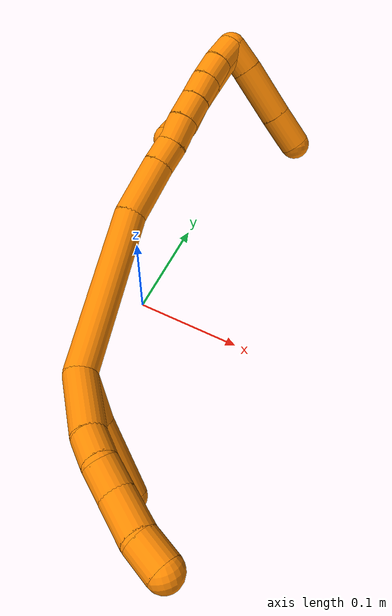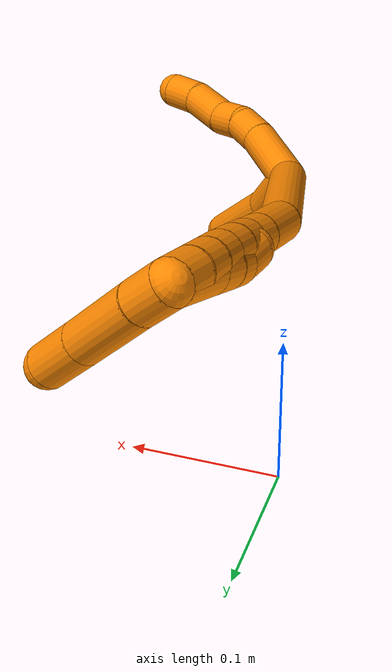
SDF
<sdf version="1.7">
 <world name="default">
  <model name="19">
   <static>0</static>
   <link name="19">
    <collision name="collision-cylinder-e_1_2_8">
     <pose>0.013506 -0.015244 -0.015307 2.35827 0.558727 1.21417</pose>
     <geometry><cylinder><radius>0.0125</radius><length>0.050954</length></cylinder></geometry>
     <surface>
      <friction><ode><mu>1.16</mu><mu2>1.16</mu2><slip1>0</slip1><slip2>0</slip2></ode></friction>
      <contact><ode><kp>1e+06</kp><kd>1</kd><max_vel>0</max_vel><min_depth>0.001</min_depth></ode></contact>
     </surface>
    </collision>
    <visual name="visual-cylinder-e_1_2_8">
     <pose>0.013506 -0.015244 -0.015307 2.35827 0.558727 1.21417</pose>
     <geometry><cylinder><radius>0.0125</radius><length>0.050954</length></cylinder></geometry>
     <material><ambient>0.996078 0.537255 0 1</ambient></material>
    </visual>
    <collision name="collision-cylinder-e_2_8_9">
     <pose>0.034385 -0.035503 -0.037378 2.50354 0.719241 1.69991</pose>
     <geometry><cylinder><radius>0.0125</radius><length>0.022384</length></cylinder></geometry>
     <surface>
      <friction><ode><mu>1.16</mu><mu2>1.16</mu2><slip1>0</slip1><slip2>0</slip2></ode></friction>
      <contact><ode><kp>1e+06</kp><kd>1</kd><max_vel>0</max_vel><min_depth>0.001</min_depth></ode></contact>
     </surface>
    </collision>
    <visual name="visual-cylinder-e_2_8_9">
     <pose>0.034385 -0.035503 -0.037378 2.50354 0.719241 1.69991</pose>
     <geometry><cylinder><radius>0.0125</radius><length>0.022384</length></cylinder></geometry>
     <material><ambient>0.996078 0.537255 0 1</ambient></material>
    </visual>
    <collision name="collision-cylinder-e_3_9_10">
     <pose>0.047768 -0.043024 -0.053212 2.87209 0.568278 2.27234</pose>
     <geometry><cylinder><radius>0.0125</radius><length>0.022332</length></cylinder></geometry>
     <surface>
      <friction><ode><mu>1.16</mu><mu2>1.16</mu2><slip1>0</slip1><slip2>0</slip2></ode></friction>
      <contact><ode><kp>1e+06</kp><kd>1</kd><max_vel>0</max_vel><min_depth>0.001</min_depth></ode></contact>
     </surface>
    </collision>
    <visual name="visual-cylinder-e_3_9_10">
     <pose>0.047768 -0.043024 -0.053212 2.87209 0.568278 2.27234</pose>
     <geometry><cylinder><radius>0.0125</radius><length>0.022332</length></cylinder></geometry>
     <material><ambient>0.996078 0.537255 0 1</ambient></material>
    </visual>
    <collision name="collision-cylinder-e_4_10_11">
     <pose>0.064801 -0.051393 -0.071812 2.58993 0.777996 1.93287</pose>
     <geometry><cylinder><radius>0.0125</radius><length>0.031414</length></cylinder></geometry>
     <surface>
      <friction><ode><mu>1.16</mu><mu2>1.16</mu2><slip1>0</slip1><slip2>0</slip2></ode></friction>
      <contact><ode><kp>1e+06</kp><kd>1</kd><max_vel>0</max_vel><min_depth>0.001</min_depth></ode></contact>
     </surface>
    </collision>
    <visual name="visual-cylinder-e_4_10_11">
     <pose>0.064801 -0.051393 -0.071812 2.58993 0.777996 1.93287</pose>
     <geometry><cylinder><radius>0.0125</radius><length>0.031414</length></cylinder></geometry>
     <material><ambient>0.996078 0.537255 0 1</ambient></material>
    </visual>
    <collision name="collision-cylinder-e_5_11_6">
     <pose>0.083984 -0.058957 -0.089204 2.92872 0.792455 2.64152</pose>
     <geometry><cylinder><radius>0.0125</radius><length>0.022915</length></cylinder></geometry>
     <surface>
      <friction><ode><mu>1.16</mu><mu2>1.16</mu2><slip1>0</slip1><slip2>0</slip2></ode></friction>
      <contact><ode><kp>1e+06</kp><kd>1</kd><max_vel>0</max_vel><min_depth>0.001</min_depth></ode></contact>
     </surface>
    </collision>
    <visual name="visual-cylinder-e_5_11_6">
     <pose>0.083984 -0.058957 -0.089204 2.92872 0.792455 2.64152</pose>
     <geometry><cylinder><radius>0.0125</radius><length>0.022915</length></cylinder></geometry>
     <material><ambient>0.996078 0.537255 0 1</ambient></material>
    </visual>
    <collision name="collision-cylinder-e_1_2_12">
     <pose>-0.002251 0.002617 -0.019983 -3.01138 -0.111242 1.41362</pose>
     <geometry><cylinder><radius>0.0125</radius><length>0.040558</length></cylinder></geometry>
     <surface>
      <friction><ode><mu>1.16</mu><mu2>1.16</mu2><slip1>0</slip1><slip2>0</slip2></ode></friction>
      <contact><ode><kp>1e+06</kp><kd>1</kd><max_vel>0</max_vel><min_depth>0.001</min_depth></ode></contact>
     </surface>
    </collision>
    <visual name="visual-cylinder-e_1_2_12">
     <pose>-0.002251 0.002617 -0.019983 -3.01138 -0.111242 1.41362</pose>
     <geometry><cylinder><radius>0.0125</radius><length>0.040558</length></cylinder></geometry>
     <material><ambient>0.996078 0.537255 0 1</ambient></material>
    </visual>
    <collision name="collision-cylinder-e_2_12_5">
     <pose>-0.001776 0.008032 -0.069429 -3.04689 0.091853 -1.54017</pose>
     <geometry><cylinder><radius>0.0125</radius><length>0.059442</length></cylinder></geometry>
     <surface>
      <friction><ode><mu>1.16</mu><mu2>1.16</mu2><slip1>0</slip1><slip2>0</slip2></ode></friction>
      <contact><ode><kp>1e+06</kp><kd>1</kd><max_vel>0</max_vel><min_depth>0.001</min_depth></ode></contact>
     </surface>
    </collision>
    <visual name="visual-cylinder-e_2_12_5">
     <pose>-0.001776 0.008032 -0.069429 -3.04689 0.091853 -1.54017</pose>
     <geometry><cylinder><radius>0.0125</radius><length>0.059442</length></cylinder></geometry>
     <material><ambient>0.996078 0.537255 0 1</ambient></material>
    </visual>
    <collision name="collision-cylinder-e_1_2_13">
     <pose>0.004795 0.042549 0.047476 -0.730724 0.075074 -0.02873</pose>
     <geometry><cylinder><radius>0.0125</radius><length>0.127867</length></cylinder></geometry>
     <surface>
      <friction><ode><mu>1.16</mu><mu2>1.16</mu2><slip1>0</slip1><slip2>0</slip2></ode></friction>
      <contact><ode><kp>1e+06</kp><kd>1</kd><max_vel>0</max_vel><min_depth>0.001</min_depth></ode></contact>
     </surface>
    </collision>
    <visual name="visual-cylinder-e_1_2_13">
     <pose>0.004795 0.042549 0.047476 -0.730724 0.075074 -0.02873</pose>
     <geometry><cylinder><radius>0.0125</radius><length>0.127867</length></cylinder></geometry>
     <material><ambient>0.996078 0.537255 0 1</ambient></material>
    </visual>
    <collision name="collision-cylinder-e_2_13_14">
     <pose>0.016439 0.101364 0.110394 -0.811361 0.29637 -0.128057</pose>
     <geometry><cylinder><radius>0.0125</radius><length>0.046899</length></cylinder></geometry>
     <surface>
      <friction><ode><mu>1.16</mu><mu2>1.16</mu2><slip1>0</slip1><slip2>0</slip2></ode></friction>
      <contact><ode><kp>1e+06</kp><kd>1</kd><max_vel>0</max_vel><min_depth>0.001</min_depth></ode></contact>
     </surface>
    </collision>
    <visual name="visual-cylinder-e_2_13_14">
     <pose>0.016439 0.101364 0.110394 -0.811361 0.29637 -0.128057</pose>
     <geometry><cylinder><radius>0.0125</radius><length>0.046899</length></cylinder></geometry>
     <material><ambient>0.996078 0.537255 0 1</ambient></material>
    </visual>
    <collision name="collision-cylinder-e_3_14_15">
     <pose>0.026744 0.124754 0.132142 -0.846307 0.34843 -0.158195</pose>
     <geometry><cylinder><radius>0.0125</radius><length>0.020247</length></cylinder></geometry>
     <surface>
      <friction><ode><mu>1.16</mu><mu2>1.16</mu2><slip1>0</slip1><slip2>0</slip2></ode></friction>
      <contact><ode><kp>1e+06</kp><kd>1</kd><max_vel>0</max_vel><min_depth>0.001</min_depth></ode></contact>
     </surface>
    </collision>
    <visual name="visual-cylinder-e_3_14_15">
     <pose>0.026744 0.124754 0.132142 -0.846307 0.34843 -0.158195</pose>
     <geometry><cylinder><radius>0.0125</radius><length>0.020247</length></cylinder></geometry>
     <material><ambient>0.996078 0.537255 0 1</ambient></material>
    </visual>
    <collision name="collision-cylinder-e_4_15_16">
     <pose>0.033574 0.139312 0.146672 -0.734977 0.295425 -0.114441</pose>
     <geometry><cylinder><radius>0.0125</radius><length>0.023175</length></cylinder></geometry>
     <surface>
      <friction><ode><mu>1.16</mu><mu2>1.16</mu2><slip1>0</slip1><slip2>0</slip2></ode></friction>
      <contact><ode><kp>1e+06</kp><kd>1</kd><max_vel>0</max_vel><min_depth>0.001</min_depth></ode></contact>
     </surface>
    </collision>
    <visual name="visual-cylinder-e_4_15_16">
     <pose>0.033574 0.139312 0.146672 -0.734977 0.295425 -0.114441</pose>
     <geometry><cylinder><radius>0.0125</radius><length>0.023175</length></cylinder></geometry>
     <material><ambient>0.996078 0.537255 0 1</ambient></material>
    </visual>
    <collision name="collision-cylinder-e_5_16_17">
     <pose>0.040236 0.154063 0.161837 -0.811708 0.315258 -0.136391</pose>
     <geometry><cylinder><radius>0.0125</radius><length>0.021217</length></cylinder></geometry>
     <surface>
      <friction><ode><mu>1.16</mu><mu2>1.16</mu2><slip1>0</slip1><slip2>0</slip2></ode></friction>
      <contact><ode><kp>1e+06</kp><kd>1</kd><max_vel>0</max_vel><min_depth>0.001</min_depth></ode></contact>
     </surface>
    </collision>
    <visual name="visual-cylinder-e_5_16_17">
     <pose>0.040236 0.154063 0.161837 -0.811708 0.315258 -0.136391</pose>
     <geometry><cylinder><radius>0.0125</radius><length>0.021217</length></cylinder></geometry>
     <material><ambient>0.996078 0.537255 0 1</ambient></material>
    </visual>
    <collision name="collision-cylinder-e_6_17_18">
     <pose>0.046385 0.168426 0.175456 -0.812237 0.286382 -0.123841</pose>
     <geometry><cylinder><radius>0.0125</radius><length>0.020241</length></cylinder></geometry>
     <surface>
      <friction><ode><mu>1.16</mu><mu2>1.16</mu2><slip1>0</slip1><slip2>0</slip2></ode></friction>
      <contact><ode><kp>1e+06</kp><kd>1</kd><max_vel>0</max_vel><min_depth>0.001</min_depth></ode></contact>
     </surface>
    </collision>
    <visual name="visual-cylinder-e_6_17_18">
     <pose>0.046385 0.168426 0.175456 -0.812237 0.286382 -0.123841</pose>
     <geometry><cylinder><radius>0.0125</radius><length>0.020241</length></cylinder></geometry>
     <material><ambient>0.996078 0.537255 0 1</ambient></material>
    </visual>
    <collision name="collision-cylinder-e_7_18_19">
     <pose>0.052347 0.182805 0.188245 -0.876099 0.314404 -0.14822</pose>
     <geometry><cylinder><radius>0.0125</radius><length>0.020074</length></cylinder></geometry>
     <surface>
      <friction><ode><mu>1.16</mu><mu2>1.16</mu2><slip1>0</slip1><slip2>0</slip2></ode></friction>
      <contact><ode><kp>1e+06</kp><kd>1</kd><max_vel>0</max_vel><min_depth>0.001</min_depth></ode></contact>
     </surface>
    </collision>
    <visual name="visual-cylinder-e_7_18_19">
     <pose>0.052347 0.182805 0.188245 -0.876099 0.314404 -0.14822</pose>
     <geometry><cylinder><radius>0.0125</radius><length>0.020074</length></cylinder></geometry>
     <material><ambient>0.996078 0.537255 0 1</ambient></material>
    </visual>
    <collision name="collision-cylinder-e_8_19_1">
     <pose>0.058916 0.198064 0.199646 -0.982158 0.348732 -0.187852</pose>
     <geometry><cylinder><radius>0.0125</radius><length>0.020281</length></cylinder></geometry>
     <surface>
      <friction><ode><mu>1.16</mu><mu2>1.16</mu2><slip1>0</slip1><slip2>0</slip2></ode></friction>
      <contact><ode><kp>1e+06</kp><kd>1</kd><max_vel>0</max_vel><min_depth>0.001</min_depth></ode></contact>
     </surface>
    </collision>
    <visual name="visual-cylinder-e_8_19_1">
     <pose>0.058916 0.198064 0.199646 -0.982158 0.348732 -0.187852</pose>
     <geometry><cylinder><radius>0.0125</radius><length>0.020281</length></cylinder></geometry>
     <material><ambient>0.996078 0.537255 0 1</ambient></material>
    </visual>
    <collision name="collision-cylinder-e_1_1_20">
     <pose>0.054534 0.192607 0.192622 2.31464 -0.407335 -0.879875</pose>
     <geometry><cylinder><radius>0.0125</radius><length>0.039617</length></cylinder></geometry>
     <surface>
      <friction><ode><mu>1.16</mu><mu2>1.16</mu2><slip1>0</slip1><slip2>0</slip2></ode></friction>
      <contact><ode><kp>1e+06</kp><kd>1</kd><max_vel>0</max_vel><min_depth>0.001</min_depth></ode></contact>
     </surface>
    </collision>
    <visual name="visual-cylinder-e_1_1_20">
     <pose>0.054534 0.192607 0.192622 2.31464 -0.407335 -0.879875</pose>
     <geometry><cylinder><radius>0.0125</radius><length>0.039617</length></cylinder></geometry>
     <material><ambient>0.996078 0.537255 0 1</ambient></material>
    </visual>
    <collision name="collision-cylinder-e_2_20_21">
     <pose>0.042632 0.172439 0.173974 2.32179 -0.411939 -0.896404</pose>
     <geometry><cylinder><radius>0.0125</radius><length>0.020256</length></cylinder></geometry>
     <surface>
      <friction><ode><mu>1.16</mu><mu2>1.16</mu2><slip1>0</slip1><slip2>0</slip2></ode></friction>
      <contact><ode><kp>1e+06</kp><kd>1</kd><max_vel>0</max_vel><min_depth>0.001</min_depth></ode></contact>
     </surface>
    </collision>
    <visual name="visual-cylinder-e_2_20_21">
     <pose>0.042632 0.172439 0.173974 2.32179 -0.411939 -0.896404</pose>
     <geometry><cylinder><radius>0.0125</radius><length>0.020256</length></cylinder></geometry>
     <material><ambient>0.996078 0.537255 0 1</ambient></material>
    </visual>
    <collision name="collision-cylinder-e_3_21_22">
     <pose>0.03519 0.159513 0.160477 2.43296 -0.344524 -0.879257</pose>
     <geometry><cylinder><radius>0.0125</radius><length>0.02005</length></cylinder></geometry>
     <surface>
      <friction><ode><mu>1.16</mu><mu2>1.16</mu2><slip1>0</slip1><slip2>0</slip2></ode></friction>
      <contact><ode><kp>1e+06</kp><kd>1</kd><max_vel>0</max_vel><min_depth>0.001</min_depth></ode></contact>
     </surface>
    </collision>
    <visual name="visual-cylinder-e_3_21_22">
     <pose>0.03519 0.159513 0.160477 2.43296 -0.344524 -0.879257</pose>
     <geometry><cylinder><radius>0.0125</radius><length>0.02005</length></cylinder></geometry>
     <material><ambient>0.996078 0.537255 0 1</ambient></material>
    </visual>
    <collision name="collision-cylinder-e_4_22_4">
     <pose>0.029084 0.144918 0.148635 2.07619 -0.274442 -0.460159</pose>
     <geometry><cylinder><radius>0.0125</radius><length>0.020077</length></cylinder></geometry>
     <surface>
      <friction><ode><mu>1.16</mu><mu2>1.16</mu2><slip1>0</slip1><slip2>0</slip2></ode></friction>
      <contact><ode><kp>1e+06</kp><kd>1</kd><max_vel>0</max_vel><min_depth>0.001</min_depth></ode></contact>
     </surface>
    </collision>
    <visual name="visual-cylinder-e_4_22_4">
     <pose>0.029084 0.144918 0.148635 2.07619 -0.274442 -0.460159</pose>
     <geometry><cylinder><radius>0.0125</radius><length>0.020077</length></cylinder></geometry>
     <material><ambient>0.996078 0.537255 0 1</ambient></material>
    </visual>
    <collision name="collision-cylinder-e_1_1_23">
     <pose>0.064435 0.210231 0.194808 -2.74518 0.18485 -0.864751</pose>
     <geometry><cylinder><radius>0.0125</radius><length>0.022343</length></cylinder></geometry>
     <surface>
      <friction><ode><mu>1.16</mu><mu2>1.16</mu2><slip1>0</slip1><slip2>0</slip2></ode></friction>
      <contact><ode><kp>1e+06</kp><kd>1</kd><max_vel>0</max_vel><min_depth>0.001</min_depth></ode></contact>
     </surface>
    </collision>
    <visual name="visual-cylinder-e_1_1_23">
     <pose>0.064435 0.210231 0.194808 -2.74518 0.18485 -0.864751</pose>
     <geometry><cylinder><radius>0.0125</radius><length>0.022343</length></cylinder></geometry>
     <material><ambient>0.996078 0.537255 0 1</ambient></material>
    </visual>
    <collision name="collision-cylinder-e_2_23_24">
     <pose>0.069769 0.22264 0.163093 -2.77978 0.141213 -0.737931</pose>
     <geometry><cylinder><radius>0.0125</radius><length>0.046623</length></cylinder></geometry>
     <surface>
      <friction><ode><mu>1.16</mu><mu2>1.16</mu2><slip1>0</slip1><slip2>0</slip2></ode></friction>
      <contact><ode><kp>1e+06</kp><kd>1</kd><max_vel>0</max_vel><min_depth>0.001</min_depth></ode></contact>
     </surface>
    </collision>
    <visual name="visual-cylinder-e_2_23_24">
     <pose>0.069769 0.22264 0.163093 -2.77978 0.141213 -0.737931</pose>
     <geometry><cylinder><radius>0.0125</radius><length>0.046623</length></cylinder></geometry>
     <material><ambient>0.996078 0.537255 0 1</ambient></material>
    </visual>
    <collision name="collision-cylinder-e_3_24_3">
     <pose>0.07548 0.236473 0.127267 -2.76308 0.157239 -0.780406</pose>
     <geometry><cylinder><radius>0.0125</radius><length>0.031034</length></cylinder></geometry>
     <surface>
      <friction><ode><mu>1.16</mu><mu2>1.16</mu2><slip1>0</slip1><slip2>0</slip2></ode></friction>
      <contact><ode><kp>1e+06</kp><kd>1</kd><max_vel>0</max_vel><min_depth>0.001</min_depth></ode></contact>
     </surface>
    </collision>
    <visual name="visual-cylinder-e_3_24_3">
     <pose>0.07548 0.236473 0.127267 -2.76308 0.157239 -0.780406</pose>
     <geometry><cylinder><radius>0.0125</radius><length>0.031034</length></cylinder></geometry>
     <material><ambient>0.996078 0.537255 0 1</ambient></material>
    </visual>
    <collision name="collision-sphere-3">
     <pose>0.07791 0.242136 0.113027 0 -0 0</pose>
     <geometry><sphere><radius>0.0125</radius></sphere></geometry>
     <surface>
      <friction><ode><mu>1.16</mu><mu2>1.16</mu2><slip1>0</slip1><slip2>0</slip2></ode></friction>
      <contact><ode><kp>1e+06</kp><kd>1</kd><max_vel>0</max_vel><min_depth>0.001</min_depth></ode></contact>
     </surface>
    </collision>
    <visual name="visual-sphere-3">
     <pose>0.07791 0.242136 0.113027 0 -0 0</pose>
     <geometry><sphere><radius>0.0125</radius></sphere></geometry>
     <material><ambient>0.996078 0.537255 0 1</ambient></material>
    </visual>
    <collision name="collision-sphere-24">
     <pose>0.07305 0.230809 0.141508 0 -0 0</pose>
     <geometry><sphere><radius>0.0125</radius></sphere></geometry>
     <surface>
      <friction><ode><mu>1.16</mu><mu2>1.16</mu2><slip1>0</slip1><slip2>0</slip2></ode></friction>
      <contact><ode><kp>1e+06</kp><kd>1</kd><max_vel>0</max_vel><min_depth>0.001</min_depth></ode></contact>
     </surface>
    </collision>
    <visual name="visual-sphere-24">
     <pose>0.07305 0.230809 0.141508 0 -0 0</pose>
     <geometry><sphere><radius>0.0125</radius></sphere></geometry>
     <material><ambient>0.996078 0.537255 0 1</ambient></material>
    </visual>
    <collision name="collision-sphere-23">
     <pose>0.066488 0.214471 0.184679 0 -0 0</pose>
     <geometry><sphere><radius>0.0125</radius></sphere></geometry>
     <surface>
      <friction><ode><mu>1.16</mu><mu2>1.16</mu2><slip1>0</slip1><slip2>0</slip2></ode></friction>
      <contact><ode><kp>1e+06</kp><kd>1</kd><max_vel>0</max_vel><min_depth>0.001</min_depth></ode></contact>
     </surface>
    </collision>
    <visual name="visual-sphere-23">
     <pose>0.066488 0.214471 0.184679 0 -0 0</pose>
     <geometry><sphere><radius>0.0125</radius></sphere></geometry>
     <material><ambient>0.996078 0.537255 0 1</ambient></material>
    </visual>
    <collision name="collision-sphere-4">
     <pose>0.026364 0.136463 0.143957 0 -0 0</pose>
     <geometry><sphere><radius>0.0125</radius></sphere></geometry>
     <surface>
      <friction><ode><mu>1.16</mu><mu2>1.16</mu2><slip1>0</slip1><slip2>0</slip2></ode></friction>
      <contact><ode><kp>1e+06</kp><kd>1</kd><max_vel>0</max_vel><min_depth>0.001</min_depth></ode></contact>
     </surface>
    </collision>
    <visual name="visual-sphere-4">
     <pose>0.026364 0.136463 0.143957 0 -0 0</pose>
     <geometry><sphere><radius>0.0125</radius></sphere></geometry>
     <material><ambient>0.996078 0.537255 0 1</ambient></material>
    </visual>
    <collision name="collision-sphere-22">
     <pose>0.031805 0.153373 0.153313 0 -0 0</pose>
     <geometry><sphere><radius>0.0125</radius></sphere></geometry>
     <surface>
      <friction><ode><mu>1.16</mu><mu2>1.16</mu2><slip1>0</slip1><slip2>0</slip2></ode></friction>
      <contact><ode><kp>1e+06</kp><kd>1</kd><max_vel>0</max_vel><min_depth>0.001</min_depth></ode></contact>
     </surface>
    </collision>
    <visual name="visual-sphere-22">
     <pose>0.031805 0.153373 0.153313 0 -0 0</pose>
     <geometry><sphere><radius>0.0125</radius></sphere></geometry>
     <material><ambient>0.996078 0.537255 0 1</ambient></material>
    </visual>
    <collision name="collision-sphere-21">
     <pose>0.038576 0.165654 0.167641 0 -0 0</pose>
     <geometry><sphere><radius>0.0125</radius></sphere></geometry>
     <surface>
      <friction><ode><mu>1.16</mu><mu2>1.16</mu2><slip1>0</slip1><slip2>0</slip2></ode></friction>
      <contact><ode><kp>1e+06</kp><kd>1</kd><max_vel>0</max_vel><min_depth>0.001</min_depth></ode></contact>
     </surface>
    </collision>
    <visual name="visual-sphere-21">
     <pose>0.038576 0.165654 0.167641 0 -0 0</pose>
     <geometry><sphere><radius>0.0125</radius></sphere></geometry>
     <material><ambient>0.996078 0.537255 0 1</ambient></material>
    </visual>
    <collision name="collision-sphere-20">
     <pose>0.046687 0.179223 0.180307 0 -0 0</pose>
     <geometry><sphere><radius>0.0125</radius></sphere></geometry>
     <surface>
      <friction><ode><mu>1.16</mu><mu2>1.16</mu2><slip1>0</slip1><slip2>0</slip2></ode></friction>
      <contact><ode><kp>1e+06</kp><kd>1</kd><max_vel>0</max_vel><min_depth>0.001</min_depth></ode></contact>
     </surface>
    </collision>
    <visual name="visual-sphere-20">
     <pose>0.046687 0.179223 0.180307 0 -0 0</pose>
     <geometry><sphere><radius>0.0125</radius></sphere></geometry>
     <material><ambient>0.996078 0.537255 0 1</ambient></material>
    </visual>
    <collision name="collision-sphere-6">
     <pose>0.092143 -0.060656 -0.097067 0 -0 0</pose>
     <geometry><sphere><radius>0.0125</radius></sphere></geometry>
     <surface>
      <friction><ode><mu>1.16</mu><mu2>1.16</mu2><slip1>0</slip1><slip2>0</slip2></ode></friction>
      <contact><ode><kp>1e+06</kp><kd>1</kd><max_vel>0</max_vel><min_depth>0.001</min_depth></ode></contact>
     </surface>
    </collision>
    <visual name="visual-sphere-6">
     <pose>0.092143 -0.060656 -0.097067 0 -0 0</pose>
     <geometry><sphere><radius>0.0125</radius></sphere></geometry>
     <material><ambient>0.996078 0.537255 0 1</ambient></material>
    </visual>
    <collision name="collision-sphere-11">
     <pose>0.075825 -0.057257 -0.081341 0 -0 0</pose>
     <geometry><sphere><radius>0.0125</radius></sphere></geometry>
     <surface>
      <friction><ode><mu>1.16</mu><mu2>1.16</mu2><slip1>0</slip1><slip2>0</slip2></ode></friction>
      <contact><ode><kp>1e+06</kp><kd>1</kd><max_vel>0</max_vel><min_depth>0.001</min_depth></ode></contact>
     </surface>
    </collision>
    <visual name="visual-sphere-11">
     <pose>0.075825 -0.057257 -0.081341 0 -0 0</pose>
     <geometry><sphere><radius>0.0125</radius></sphere></geometry>
     <material><ambient>0.996078 0.537255 0 1</ambient></material>
    </visual>
    <collision name="collision-sphere-10">
     <pose>0.053777 -0.045529 -0.062284 0 -0 0</pose>
     <geometry><sphere><radius>0.0125</radius></sphere></geometry>
     <surface>
      <friction><ode><mu>1.16</mu><mu2>1.16</mu2><slip1>0</slip1><slip2>0</slip2></ode></friction>
      <contact><ode><kp>1e+06</kp><kd>1</kd><max_vel>0</max_vel><min_depth>0.001</min_depth></ode></contact>
     </surface>
    </collision>
    <visual name="visual-sphere-10">
     <pose>0.053777 -0.045529 -0.062284 0 -0 0</pose>
     <geometry><sphere><radius>0.0125</radius></sphere></geometry>
     <material><ambient>0.996078 0.537255 0 1</ambient></material>
    </visual>
    <collision name="collision-sphere-9">
     <pose>0.041758 -0.040518 -0.044141 0 -0 0</pose>
     <geometry><sphere><radius>0.0125</radius></sphere></geometry>
     <surface>
      <friction><ode><mu>1.16</mu><mu2>1.16</mu2><slip1>0</slip1><slip2>0</slip2></ode></friction>
      <contact><ode><kp>1e+06</kp><kd>1</kd><max_vel>0</max_vel><min_depth>0.001</min_depth></ode></contact>
     </surface>
    </collision>
    <visual name="visual-sphere-9">
     <pose>0.041758 -0.040518 -0.044141 0 -0 0</pose>
     <geometry><sphere><radius>0.0125</radius></sphere></geometry>
     <material><ambient>0.996078 0.537255 0 1</ambient></material>
    </visual>
    <collision name="collision-sphere-2">
     <geometry><sphere><radius>0.0125</radius></sphere></geometry>
     <surface>
      <friction><ode><mu>1.16</mu><mu2>1.16</mu2><slip1>0</slip1><slip2>0</slip2></ode></friction>
      <contact><ode><kp>1e+06</kp><kd>1</kd><max_vel>0</max_vel><min_depth>0.001</min_depth></ode></contact>
     </surface>
    </collision>
    <visual name="visual-sphere-2">
     <geometry><sphere><radius>0.0125</radius></sphere></geometry>
     <material><ambient>0.996078 0.537255 0 1</ambient></material>
    </visual>
    <collision name="collision-sphere-19">
     <pose>0.055451 0.190138 0.194355 0 -0 0</pose>
     <geometry><sphere><radius>0.0125</radius></sphere></geometry>
     <surface>
      <friction><ode><mu>1.16</mu><mu2>1.16</mu2><slip1>0</slip1><slip2>0</slip2></ode></friction>
      <contact><ode><kp>1e+06</kp><kd>1</kd><max_vel>0</max_vel><min_depth>0.001</min_depth></ode></contact>
     </surface>
    </collision>
    <visual name="visual-sphere-19">
     <pose>0.055451 0.190138 0.194355 0 -0 0</pose>
     <geometry><sphere><radius>0.0125</radius></sphere></geometry>
     <material><ambient>0.996078 0.537255 0 1</ambient></material>
    </visual>
    <collision name="collision-sphere-8">
     <pose>0.027011 -0.030488 -0.030614 0 -0 0</pose>
     <geometry><sphere><radius>0.0125</radius></sphere></geometry>
     <surface>
      <friction><ode><mu>1.16</mu><mu2>1.16</mu2><slip1>0</slip1><slip2>0</slip2></ode></friction>
      <contact><ode><kp>1e+06</kp><kd>1</kd><max_vel>0</max_vel><min_depth>0.001</min_depth></ode></contact>
     </surface>
    </collision>
    <visual name="visual-sphere-8">
     <pose>0.027011 -0.030488 -0.030614 0 -0 0</pose>
     <geometry><sphere><radius>0.0125</radius></sphere></geometry>
     <material><ambient>0.996078 0.537255 0 1</ambient></material>
    </visual>
    <collision name="collision-sphere-12">
     <pose>-0.004502 0.005234 -0.039967 0 -0 0</pose>
     <geometry><sphere><radius>0.0125</radius></sphere></geometry>
     <surface>
      <friction><ode><mu>1.16</mu><mu2>1.16</mu2><slip1>0</slip1><slip2>0</slip2></ode></friction>
      <contact><ode><kp>1e+06</kp><kd>1</kd><max_vel>0</max_vel><min_depth>0.001</min_depth></ode></contact>
     </surface>
    </collision>
    <visual name="visual-sphere-12">
     <pose>-0.004502 0.005234 -0.039967 0 -0 0</pose>
     <geometry><sphere><radius>0.0125</radius></sphere></geometry>
     <material><ambient>0.996078 0.537255 0 1</ambient></material>
    </visual>
    <collision name="collision-sphere-5">
     <pose>0.00095 0.010831 -0.098892 0 -0 0</pose>
     <geometry><sphere><radius>0.0125</radius></sphere></geometry>
     <surface>
      <friction><ode><mu>1.16</mu><mu2>1.16</mu2><slip1>0</slip1><slip2>0</slip2></ode></friction>
      <contact><ode><kp>1e+06</kp><kd>1</kd><max_vel>0</max_vel><min_depth>0.001</min_depth></ode></contact>
     </surface>
    </collision>
    <visual name="visual-sphere-5">
     <pose>0.00095 0.010831 -0.098892 0 -0 0</pose>
     <geometry><sphere><radius>0.0125</radius></sphere></geometry>
     <material><ambient>0.996078 0.537255 0 1</ambient></material>
    </visual>
    <collision name="collision-sphere-13">
     <pose>0.00959 0.085099 0.094953 0 -0 0</pose>
     <geometry><sphere><radius>0.0125</radius></sphere></geometry>
     <surface>
      <friction><ode><mu>1.16</mu><mu2>1.16</mu2><slip1>0</slip1><slip2>0</slip2></ode></friction>
      <contact><ode><kp>1e+06</kp><kd>1</kd><max_vel>0</max_vel><min_depth>0.001</min_depth></ode></contact>
     </surface>
    </collision>
    <visual name="visual-sphere-13">
     <pose>0.00959 0.085099 0.094953 0 -0 0</pose>
     <geometry><sphere><radius>0.0125</radius></sphere></geometry>
     <material><ambient>0.996078 0.537255 0 1</ambient></material>
    </visual>
    <collision name="collision-sphere-14">
     <pose>0.023287 0.117628 0.125836 0 -0 0</pose>
     <geometry><sphere><radius>0.0125</radius></sphere></geometry>
     <surface>
      <friction><ode><mu>1.16</mu><mu2>1.16</mu2><slip1>0</slip1><slip2>0</slip2></ode></friction>
      <contact><ode><kp>1e+06</kp><kd>1</kd><max_vel>0</max_vel><min_depth>0.001</min_depth></ode></contact>
     </surface>
    </collision>
    <visual name="visual-sphere-14">
     <pose>0.023287 0.117628 0.125836 0 -0 0</pose>
     <geometry><sphere><radius>0.0125</radius></sphere></geometry>
     <material><ambient>0.996078 0.537255 0 1</ambient></material>
    </visual>
    <collision name="collision-sphere-15">
     <pose>0.0302 0.131879 0.138448 0 -0 0</pose>
     <geometry><sphere><radius>0.0125</radius></sphere></geometry>
     <surface>
      <friction><ode><mu>1.16</mu><mu2>1.16</mu2><slip1>0</slip1><slip2>0</slip2></ode></friction>
      <contact><ode><kp>1e+06</kp><kd>1</kd><max_vel>0</max_vel><min_depth>0.001</min_depth></ode></contact>
     </surface>
    </collision>
    <visual name="visual-sphere-15">
     <pose>0.0302 0.131879 0.138448 0 -0 0</pose>
     <geometry><sphere><radius>0.0125</radius></sphere></geometry>
     <material><ambient>0.996078 0.537255 0 1</ambient></material>
    </visual>
    <collision name="collision-sphere-16">
     <pose>0.036947 0.146746 0.154895 0 -0 0</pose>
     <geometry><sphere><radius>0.0125</radius></sphere></geometry>
     <surface>
      <friction><ode><mu>1.16</mu><mu2>1.16</mu2><slip1>0</slip1><slip2>0</slip2></ode></friction>
      <contact><ode><kp>1e+06</kp><kd>1</kd><max_vel>0</max_vel><min_depth>0.001</min_depth></ode></contact>
     </surface>
    </collision>
    <visual name="visual-sphere-16">
     <pose>0.036947 0.146746 0.154895 0 -0 0</pose>
     <geometry><sphere><radius>0.0125</radius></sphere></geometry>
     <material><ambient>0.996078 0.537255 0 1</ambient></material>
    </visual>
    <collision name="collision-sphere-17">
     <pose>0.043526 0.161379 0.168778 0 -0 0</pose>
     <geometry><sphere><radius>0.0125</radius></sphere></geometry>
     <surface>
      <friction><ode><mu>1.16</mu><mu2>1.16</mu2><slip1>0</slip1><slip2>0</slip2></ode></friction>
      <contact><ode><kp>1e+06</kp><kd>1</kd><max_vel>0</max_vel><min_depth>0.001</min_depth></ode></contact>
     </surface>
    </collision>
    <visual name="visual-sphere-17">
     <pose>0.043526 0.161379 0.168778 0 -0 0</pose>
     <geometry><sphere><radius>0.0125</radius></sphere></geometry>
     <material><ambient>0.996078 0.537255 0 1</ambient></material>
    </visual>
    <collision name="collision-sphere-18">
     <pose>0.049243 0.175472 0.182134 0 -0 0</pose>
     <geometry><sphere><radius>0.0125</radius></sphere></geometry>
     <surface>
      <friction><ode><mu>1.16</mu><mu2>1.16</mu2><slip1>0</slip1><slip2>0</slip2></ode></friction>
      <contact><ode><kp>1e+06</kp><kd>1</kd><max_vel>0</max_vel><min_depth>0.001</min_depth></ode></contact>
     </surface>
    </collision>
    <visual name="visual-sphere-18">
     <pose>0.049243 0.175472 0.182134 0 -0 0</pose>
     <geometry><sphere><radius>0.0125</radius></sphere></geometry>
     <material><ambient>0.996078 0.537255 0 1</ambient></material>
    </visual>
    <collision name="collision-sphere-1">
     <pose>0.062382 0.205991 0.204938 0 -0 0</pose>
     <geometry><sphere><radius>0.0125</radius></sphere></geometry>
     <surface>
      <friction><ode><mu>1.16</mu><mu2>1.16</mu2><slip1>0</slip1><slip2>0</slip2></ode></friction>
      <contact><ode><kp>1e+06</kp><kd>1</kd><max_vel>0</max_vel><min_depth>0.001</min_depth></ode></contact>
     </surface>
    </collision>
    <visual name="visual-sphere-1">
     <pose>0.062382 0.205991 0.204938 0 -0 0</pose>
     <geometry><sphere><radius>0.0125</radius></sphere></geometry>
     <material><ambient>0.996078 0.537255 0 1</ambient></material>
    </visual>
    <inertial>
     <pose>0.032504 0.086729 0.071141 0 -0 0</pose>
     <mass>0.75</mass>
     <inertia>
      <ixx>0.000206</ixx>
      <ixy>0</ixy>
      <ixz>0</ixz>
      <iyy>0.000128</iyy>
      <iyz>0</iyz>
      <izz>-0.000166</izz>
     </inertia>
    </inertial>
   </link>
   <pose>0.036781 -0.142342 0.144282 -0.646005 -0.633356 0.162156</pose>
  </model>
 </world>
</sdf>
